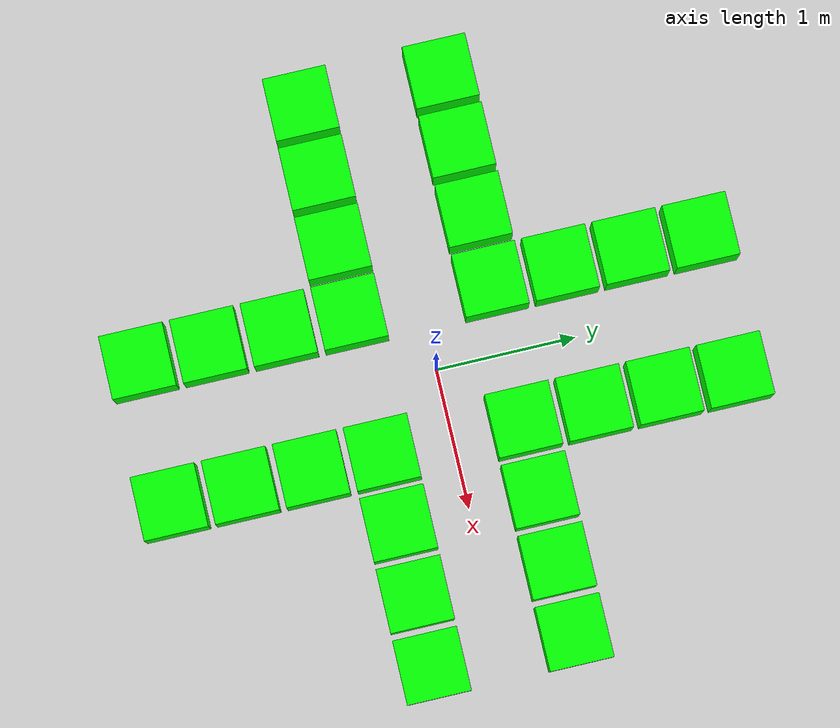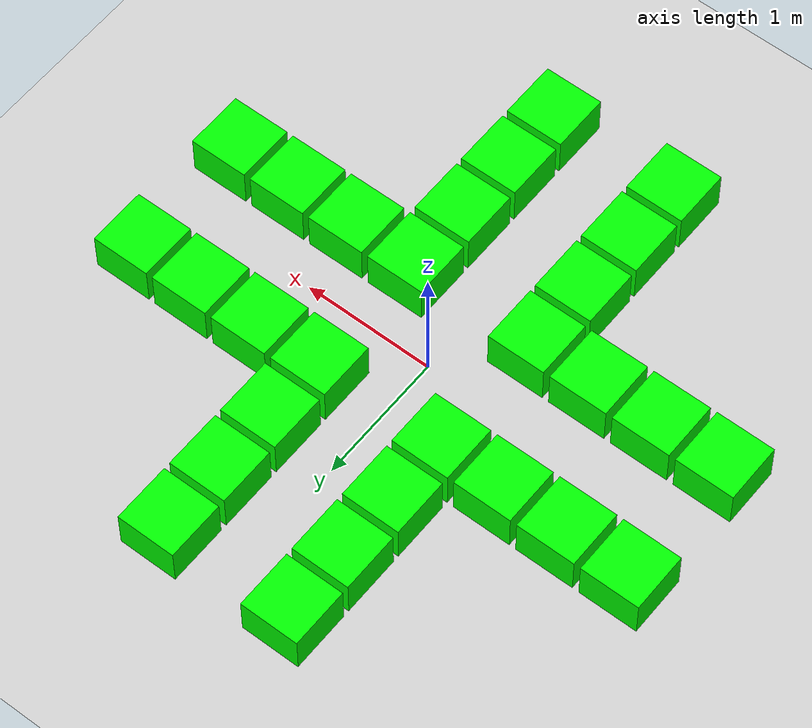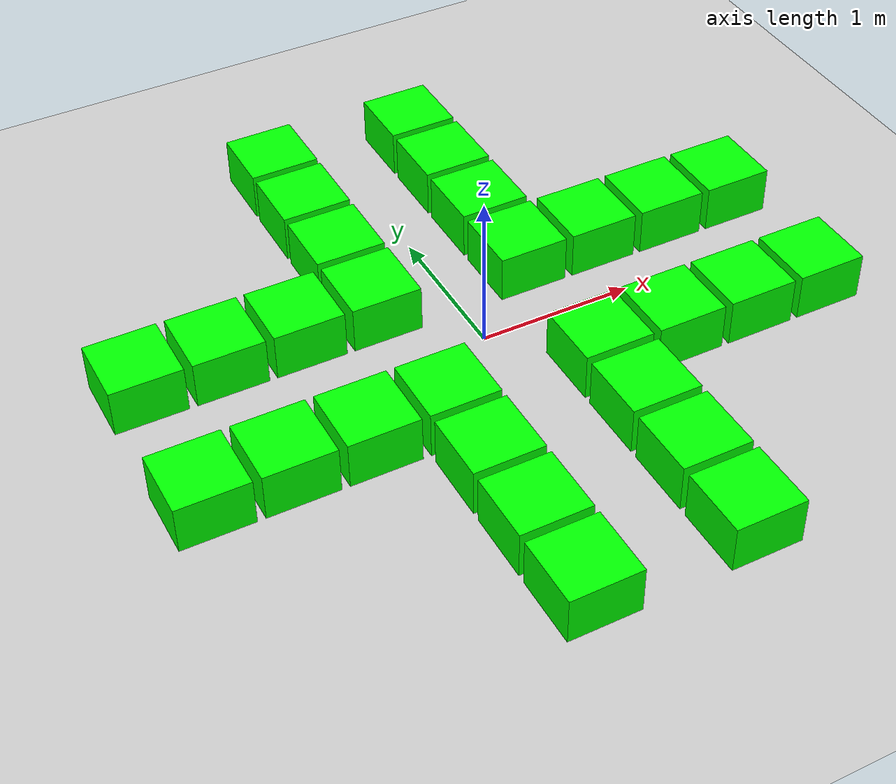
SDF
<?xml version="1.0" ?>

<sdf version="1.6">
  <world name="default">

    <include>
      <uri>model://sun</uri>
    </include>
    <include>
      <uri>model://ground_plane</uri>
    </include>

    <!-- Box Obstacle 1 -->
    <model name="box_obstacle1">
      <static>true</static>
      <pose>0.5 0.5 0 0 0 0</pose> <!-- Set the pose (position and orientation) of the box -->
      <link name="link">
        <collision name="collision">
          <geometry>
            <box>
              <size>0.45 0.45 0.6</size> <!-- Set the size of the box -->
            </box>
          </geometry>
        </collision>
        <visual name="visual">
          <geometry>
            <box>
              <size>0.45 0.45 0.6</size> <!-- Set the size of the box -->
            </box>
          </geometry>
          <material>
            <ambient>0 1 0 1</ambient> <!-- Set the ambient color to green (RGBA) -->
            <diffuse>0 1 0 1</diffuse> <!-- Set the diffuse color to green (RGBA) -->
            <specular>0.7 0.7 0.7 1</specular> <!-- Set the specular color to light gray (RGBA) -->
            <emissive>0 0 0 1</emissive> <!-- Set the emissive color to black (RGBA) -->
          </material>
        </visual>
      </link>
    </model>

<model name="box_obstacle2">
  <static>true</static>
  <pose>-0.5 0.5 0 0 0 0</pose>
  <link name="link">
    <collision name="collision">
      <geometry>
        <box>
          <size>0.45 0.45 0.6</size>
        </box>
      </geometry>
    </collision>
    <visual name="visual">
      <geometry>
        <box>
          <size>0.45 0.45 0.6</size>
        </box>
      </geometry>
      <material>
        <ambient>0 1 0 1</ambient>
        <diffuse>0 1 0 1</diffuse>
        <specular>0.7 0.7 0.7 1</specular>
        <emissive>0 0 0 1</emissive>
      </material>
    </visual>
  </link>
</model>

<model name="box_obstacle3">
  <static>true</static>
  <pose>0.5 -0.5 0 0 0 0</pose>
  <link name="link">
    <collision name="collision">
      <geometry>
        <box>
          <size>0.45 0.45 0.6</size>
        </box>
      </geometry>
    </collision>
    <visual name="visual">
      <geometry>
        <box>
          <size>0.45 0.45 0.6</size>
        </box>
      </geometry>
      <material>
        <ambient>0 1 0 1</ambient>
        <diffuse>0 1 0 1</diffuse>
        <specular>0.7 0.7 0.7 1</specular>
        <emissive>0 0 0 1</emissive>
      </material>
    </visual>
  </link>
</model>

<model name="box_obstacle4">
  <static>true</static>
  <pose>-0.5 -0.5 0 0 0 0</pose>
  <link name="link">
    <collision name="collision">
      <geometry>
        <box>
          <size>0.45 0.45 0.6</size>
        </box>
      </geometry>
    </collision>
    <visual name="visual">
      <geometry>
        <box>
          <size>0.45 0.45 0.6</size>
        </box>
      </geometry>
      <material>
        <ambient>0 1 0 1</ambient>
        <diffuse>0 1 0 1</diffuse>
        <specular>0.7 0.7 0.7 1</specular>
        <emissive>0 0 0 1</emissive>
      </material>
    </visual>
  </link>
</model>

<model name="box_obstacle5">
  <static>true</static>
  <pose>-1 0.5 0 0 0 0</pose>
  <link name="link">
    <collision name="collision">
      <geometry>
        <box>
          <size>0.45 0.45 0.6</size>
        </box>
      </geometry>
    </collision>
    <visual name="visual">
      <geometry>
        <box>
          <size>0.45 0.45 0.6</size>
        </box>
      </geometry>
      <material>
        <ambient>0 1 0 1</ambient>
        <diffuse>0 1 0 1</diffuse>
        <specular>0.7 0.7 0.7 1</specular>
        <emissive>0 0 0 1</emissive>
      </material>
    </visual>
  </link>
</model>

<model name="box_obstacle6">
  <static>true</static>
  <pose>-1.5 0.5 0 0 0 0</pose>
  <link name="link">
    <collision name="collision">
      <geometry>
        <box>
          <size>0.45 0.45 0.6</size>
        </box>
      </geometry>
    </collision>
    <visual name="visual">
      <geometry>
        <box>
          <size>0.45 0.45 0.6</size>
        </box>
      </geometry>
      <material>
        <ambient>0 1 0 1</ambient>
        <diffuse>0 1 0 1</diffuse>
        <specular>0.7 0.7 0.7 1</specular>
        <emissive>0 0 0 1</emissive>
      </material>
    </visual>
  </link>
</model>

<model name="box_obstacle7">
  <static>true</static>
  <pose>0.5 -1 0 0 0 0</pose>
  <link name="link">
    <collision name="collision">
      <geometry>
        <box>
          <size>0.45 0.45 0.6</size>
        </box>
      </geometry>
    </collision>
    <visual name="visual">
      <geometry>
        <box>
          <size>0.45 0.45 0.6</size>
        </box>
      </geometry>
      <material>
        <ambient>0 1 0 1</ambient>
        <diffuse>0 1 0 1</diffuse>
        <specular>0.7 0.7 0.7 1</specular>
        <emissive>0 0 0 1</emissive>
      </material>
    </visual>
  </link>
</model>

<model name="box_obstacle8">
  <static>true</static>
  <pose>0.5 -1.5 0 0 0 0</pose>
  <link name="link">
    <collision name="collision">
      <geometry>
        <box>
          <size>0.45 0.45 0.6</size>
        </box>
      </geometry>
    </collision>
    <visual name="visual">
      <geometry>
        <box>
          <size>0.45 0.45 0.6</size>
        </box>
      </geometry>
      <material>
        <ambient>0 1 0 1</ambient>
        <diffuse>0 1 0 1</diffuse>
        <specular>0.7 0.7 0.7 1</specular>
        <emissive>0 0 0 1</emissive>
      </material>
    </visual>
  </link>
</model>

<model name="box_obstacle9">
  <static>true</static>
  <pose>0.5 -2 0 0 0 0</pose>
  <link name="link">
    <collision name="collision">
      <geometry>
        <box>
          <size>0.45 0.45 0.6</size>
        </box>
      </geometry>
    </collision>
    <visual name="visual">
      <geometry>
        <box>
          <size>0.45 0.45 0.6</size>
        </box>
      </geometry>
      <material>
        <ambient>0 1 0 1</ambient>
        <diffuse>0 1 0 1</diffuse>
        <specular>0.7 0.7 0.7 1</specular>
        <emissive>0 0 0 1</emissive>
      </material>
    </visual>
  </link>
</model>

<model name="box_obstacle10">
  <static>true</static>
  <pose>-2 0.5 0 0 0 0</pose>
  <link name="link">
    <collision name="collision">
      <geometry>
        <box>
          <size>0.45 0.45 0.6</size>
        </box>
      </geometry>
    </collision>
    <visual name="visual">
      <geometry>
        <box>
          <size>0.45 0.45 0.6</size>
        </box>
      </geometry>
      <material>
        <ambient>0 1 0 1</ambient>
        <diffuse>0 1 0 1</diffuse>
        <specular>0.7 0.7 0.7 1</specular>
        <emissive>0 0 0 1</emissive>
      </material>
    </visual>
  </link>
</model>
<model name="box_obstacle11">
  <static>true</static>
  <pose>1 -0.5 0 0 0 0</pose>
  <link name="link">
    <collision name="collision">
      <geometry>
        <box>
          <size>0.45 0.45 0.6</size>
        </box>
      </geometry>
    </collision>
    <visual name="visual">
      <geometry>
        <box>
          <size>0.45 0.45 0.6</size>
        </box>
      </geometry>
      <material>
        <ambient>0 1 0 1</ambient>
        <diffuse>0 1 0 1</diffuse>
        <specular>0.7 0.7 0.7 1</specular>
        <emissive>0 0 0 1</emissive>
      </material>
    </visual>
  </link>
</model>
<model name="box_obstacle12">
  <static>true</static>
  <pose>1.5 -0.5 0 0 0 0</pose>
  <link name="link">
    <collision name="collision">
      <geometry>
        <box>
          <size>0.45 0.45 0.6</size>
        </box>
      </geometry>
    </collision>
    <visual name="visual">
      <geometry>
        <box>
          <size>0.45 0.45 0.6</size>
        </box>
      </geometry>
      <material>
        <ambient>0 1 0 1</ambient>
        <diffuse>0 1 0 1</diffuse>
        <specular>0.7 0.7 0.7 1</specular>
        <emissive>0 0 0 1</emissive>
      </material>
    </visual>
  </link>
</model>
<model name="box_obstacle13">
  <static>true</static>
  <pose>-0.5 1 0 0 0 0</pose>
  <link name="link">
    <collision name="collision">
      <geometry>
        <box>
          <size>0.45 0.45 0.6</size>
        </box>
      </geometry>
    </collision>
    <visual name="visual">
      <geometry>
        <box>
          <size>0.45 0.45 0.6</size>
        </box>
      </geometry>
      <material>
        <ambient>0 1 0 1</ambient>
        <diffuse>0 1 0 1</diffuse>
        <specular>0.7 0.7 0.7 1</specular>
        <emissive>0 0 0 1</emissive>
      </material>
    </visual>
  </link>
</model>

<model name="box_obstacle14">
  <static>true</static>
  <pose>-0.5 1.5 0 0 0 0</pose>
  <link name="link">
    <collision name="collision">
      <geometry>
        <box>
          <size>0.45 0.45 0.6</size>
        </box>
      </geometry>
    </collision>
    <visual name="visual">
      <geometry>
        <box>
          <size>0.45 0.45 0.6</size>
        </box>
      </geometry>
      <material>
        <ambient>0 1 0 1</ambient>
        <diffuse>0 1 0 1</diffuse>
        <specular>0.7 0.7 0.7 1</specular>
        <emissive>0 0 0 1</emissive>
      </material>
    </visual>
  </link>
</model>
<model name="box_obstacle15">
  <static>true</static>
  <pose>-0.5 2 0 0 0 0</pose>
  <link name="link">
    <collision name="collision">
      <geometry>
        <box>
          <size>0.45 0.45 0.6</size>
        </box>
      </geometry>
    </collision>
    <visual name="visual">
      <geometry>
        <box>
          <size>0.45 0.45 0.6</size>
        </box>
      </geometry>
      <material>
        <ambient>0 1 0 1</ambient>
        <diffuse>0 1 0 1</diffuse>
        <specular>0.7 0.7 0.7 1</specular>
        <emissive>0 0 0 1</emissive>
      </material>
    </visual>
  </link>
</model>

<model name="box_obstacle16">
  <static>true</static>
  <pose>0.5 0.5 0 0 0 0</pose>
  <link name="link">
    <collision name="collision">
      <geometry>
        <box>
          <size>0.45 0.45 0.6</size>
        </box>
      </geometry>
    </collision>
    <visual name="visual">
      <geometry>
        <box>
          <size>0.45 0.45 0.6</size>
        </box>
      </geometry>
      <material>
        <ambient>0 1 0 1</ambient>
        <diffuse>0 1 0 1</diffuse>
        <specular>0.7 0.7 0.7 1</specular>
        <emissive>0 0 0 1</emissive>
      </material>
    </visual>
  </link>
</model>

<model name="box_obstacle17">
  <static>true</static>
  <pose>1 0.5 0 0 0 0</pose>
  <link name="link">
    <collision name="collision">
      <geometry>
        <box>
          <size>0.45 0.45 0.6</size>
        </box>
      </geometry>
    </collision>
    <visual name="visual">
      <geometry>
        <box>
          <size>0.45 0.45 0.6</size>
        </box>
      </geometry>
      <material>
        <ambient>0 1 0 1</ambient>
        <diffuse>0 1 0 1</diffuse>
        <specular>0.7 0.7 0.7 1</specular>
        <emissive>0 0 0 1</emissive>
      </material>
    </visual>
  </link>
</model>

<model name="box_obstacle18">
  <static>true</static>
  <pose>1.5 0.5 0 0 0 0</pose>
  <link name="link">
    <collision name="collision">
      <geometry>
        <box>
          <size>0.45 0.45 0.6</size>
        </box>
      </geometry>
    </collision>
    <visual name="visual">
      <geometry>
        <box>
          <size>0.45 0.45 0.6</size>
        </box>
      </geometry>
      <material>
        <ambient>0 1 0 1</ambient>
        <diffuse>0 1 0 1</diffuse>
        <specular>0.7 0.7 0.7 1</specular>
        <emissive>0 0 0 1</emissive>
      </material>
    </visual>
  </link>
</model>

<model name="box_obstacle19">
  <static>true</static>
  <pose>2 0.5 0 0 0 0</pose>
  <link name="link">
    <collision name="collision">
      <geometry>
        <box>
          <size>0.45 0.45 0.6</size>
        </box>
      </geometry>
    </collision>
    <visual name="visual">
      <geometry>
        <box>
          <size>0.45 0.45 0.6</size>
        </box>
      </geometry>
      <material>
        <ambient>0 1 0 1</ambient>
        <diffuse>0 1 0 1</diffuse>
        <specular>0.7 0.7 0.7 1</specular>
        <emissive>0 0 0 1</emissive>
      </material>
    </visual>
  </link>
</model>

<model name="box_obstacle20">
  <static>true</static>
  <pose>2 -0.5 0 0 0 0</pose>
  <link name="link">
    <collision name="collision">
      <geometry>
        <box>
          <size>0.45 0.45 0.6</size>
        </box>
      </geometry>
    </collision>
    <visual name="visual">
      <geometry>
        <box>
          <size>0.45 0.45 0.6</size>
        </box>
      </geometry>
      <material>
        <ambient>0 1 0 1</ambient>
        <diffuse>0 1 0 1</diffuse>
        <specular>0.7 0.7 0.7 1</specular>
        <emissive>0 0 0 1</emissive>
      </material>
    </visual>
  </link>
</model>

<model name="box_obstacle21">
  <static>true</static>
  <pose>0.5 1 0 0 0 0</pose>
  <link name="link">
    <collision name="collision">
      <geometry>
        <box>
          <size>0.45 0.45 0.6</size>
        </box>
      </geometry>
    </collision>
    <visual name="visual">
      <geometry>
        <box>
          <size>0.45 0.45 0.6</size>
        </box>
      </geometry>
      <material>
        <ambient>0 1 0 1</ambient>
        <diffuse>0 1 0 1</diffuse>
        <specular>0.7 0.7 0.7 1</specular>
        <emissive>0 0 0 1</emissive>
      </material>
    </visual>
  </link>
</model>

<model name="box_obstacle22">
  <static>true</static>
  <pose>0.5 1.5 0 0 0 0</pose>
  <link name="link">
    <collision name="collision">
      <geometry>
        <box>
          <size>0.45 0.45 0.6</size>
        </box>
      </geometry>
    </collision>
    <visual name="visual">
      <geometry>
        <box>
          <size>0.45 0.45 0.6</size>
        </box>
      </geometry>
      <material>
        <ambient>0 1 0 1</ambient>
        <diffuse>0 1 0 1</diffuse>
        <specular>0.7 0.7 0.7 1</specular>
        <emissive>0 0 0 1</emissive>
      </material>
    </visual>
  </link>
</model>

<model name="box_obstacle23">
  <static>true</static>
  <pose>0.5 2 0 0 0 0</pose>
  <link name="link">
    <collision name="collision">
      <geometry>
        <box>
          <size>0.45 0.45 0.6</size>
        </box>
      </geometry>
    </collision>
    <visual name="visual">
      <geometry>
        <box>
          <size>0.45 0.45 0.6</size>
        </box>
      </geometry>
      <material>
        <ambient>0 1 0 1</ambient>
        <diffuse>0 1 0 1</diffuse>
        <specular>0.7 0.7 0.7 1</specular>
        <emissive>0 0 0 1</emissive>
      </material>
    </visual>
  </link>
</model>

<model name="box_obstacle24">
  <static>true</static>
  <pose>-1 -0.5 0 0 0 0</pose>
  <link name="link">
    <collision name="collision">
      <geometry>
        <box>
          <size>0.45 0.45 0.6</size>
        </box>
      </geometry>
    </collision>
    <visual name="visual">
      <geometry>
        <box>
          <size>0.45 0.45 0.6</size>
        </box>
      </geometry>
      <material>
        <ambient>0 1 0 1</ambient>
        <diffuse>0 1 0 1</diffuse>
        <specular>0.7 0.7 0.7 1</specular>
        <emissive>0 0 0 1</emissive>
      </material>
    </visual>
  </link>
</model>

<model name="box_obstacle25">
  <static>true</static>
  <pose>-1.5 -0.5 0 0 0 0</pose>
  <link name="link">
    <collision name="collision">
      <geometry>
        <box>
          <size>0.45 0.45 0.6</size>
        </box>
      </geometry>
    </collision>
    <visual name="visual">
      <geometry>
        <box>
          <size>0.45 0.45 0.6</size>
        </box>
      </geometry>
      <material>
        <ambient>0 1 0 1</ambient>
        <diffuse>0 1 0 1</diffuse>
        <specular>0.7 0.7 0.7 1</specular>
        <emissive>0 0 0 1</emissive>
      </material>
    </visual>
  </link>
</model>

<model name="box_obstacle26">
  <static>true</static>
  <pose>-2 -0.5 0 0 0 0</pose>
  <link name="link">
    <collision name="collision">
      <geometry>
        <box>
          <size>0.45 0.45 0.6</size>
        </box>
      </geometry>
    </collision>
    <visual name="visual">
      <geometry>
        <box>
          <size>0.45 0.45 0.6</size>
        </box>
      </geometry>
      <material>
        <ambient>0 1 0 1</ambient>
        <diffuse>0 1 0 1</diffuse>
        <specular>0.7 0.7 0.7 1</specular>
        <emissive>0 0 0 1</emissive>
      </material>
    </visual>
  </link>
</model>

<model name="box_obstacle27">
  <static>true</static>
  <pose>-0.5 -1 0 0 0 0</pose>
  <link name="link">
    <collision name="collision">
      <geometry>
        <box>
          <size>0.45 0.45 0.6</size>
        </box>
      </geometry>
    </collision>
    <visual name="visual">
      <geometry>
        <box>
          <size>0.45 0.45 0.6</size>
        </box>
      </geometry>
      <material>
        <ambient>0 1 0 1</ambient>
        <diffuse>0 1 0 1</diffuse>
        <specular>0.7 0.7 0.7 1</specular>
        <emissive>0 0 0 1</emissive>
      </material>
    </visual>
  </link>
</model>

<model name="box_obstacle28">
  <static>true</static>
  <pose>-0.5 -1.5 0 0 0 0</pose>
  <link name="link">
    <collision name="collision">
      <geometry>
        <box>
          <size>0.45 0.45 0.6</size>
        </box>
      </geometry>
    </collision>
    <visual name="visual">
      <geometry>
        <box>
          <size>0.45 0.45 0.6</size>
        </box>
      </geometry>
      <material>
        <ambient>0 1 0 1</ambient>
        <diffuse>0 1 0 1</diffuse>
        <specular>0.7 0.7 0.7 1</specular>
        <emissive>0 0 0 1</emissive>
      </material>
    </visual>
  </link>
</model>

<model name="box_obstacle29">
  <static>true</static>
  <pose>-0.5 -2 0 0 0 0</pose>
  <link name="link">
    <collision name="collision">
      <geometry>
        <box>
          <size>0.45 0.45 0.6</size>
        </box>
      </geometry>
    </collision>
    <visual name="visual">
      <geometry>
        <box>
          <size>0.45 0.45 0.6</size>
        </box>
      </geometry>
      <material>
        <ambient>0 1 0 1</ambient>
        <diffuse>0 1 0 1</diffuse>
        <specular>0.7 0.7 0.7 1</specular>
        <emissive>0 0 0 1</emissive>
      </material>
    </visual>
  </link>
</model>

  </world>
</sdf>
